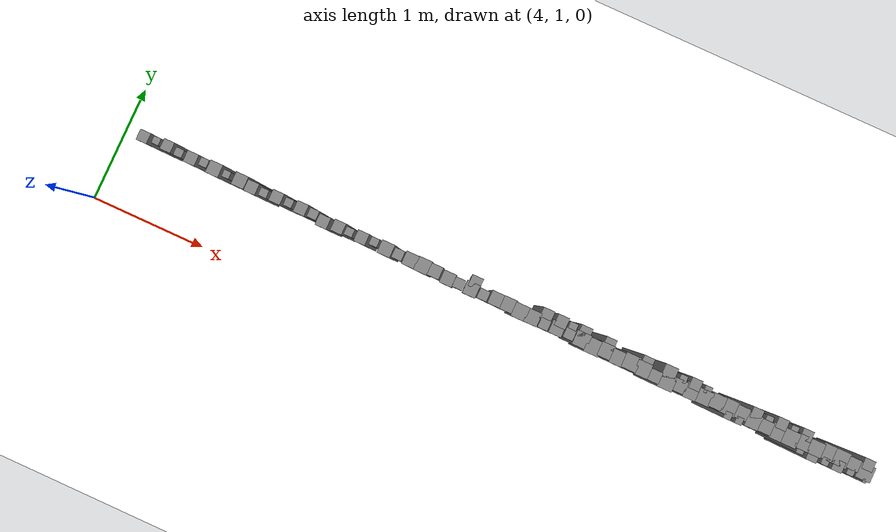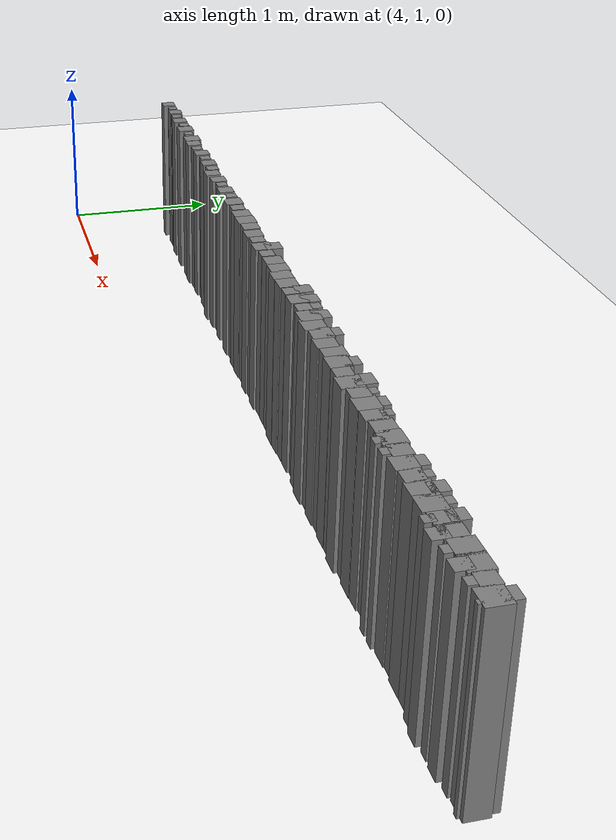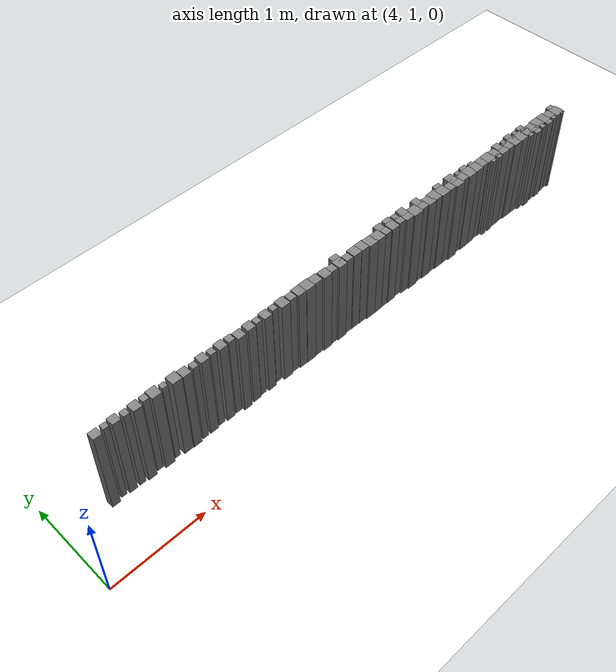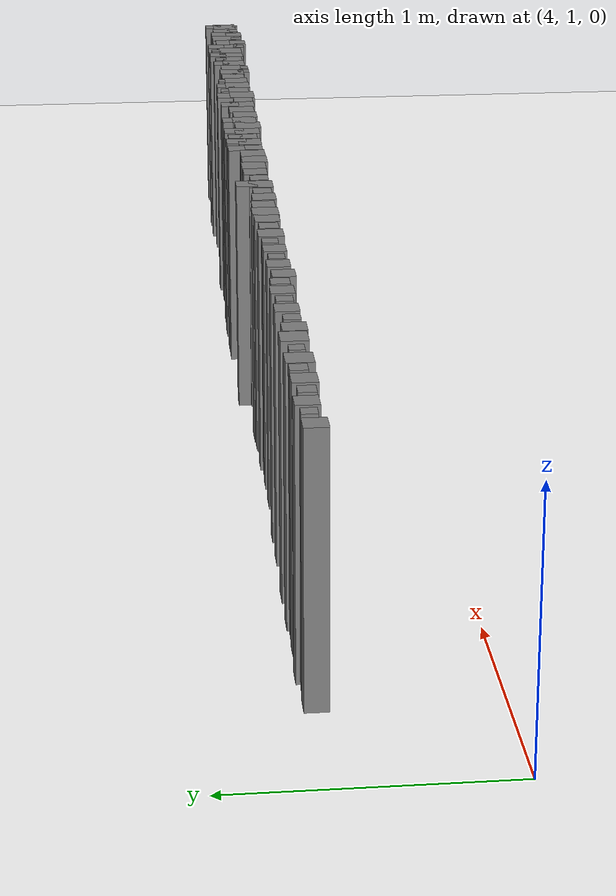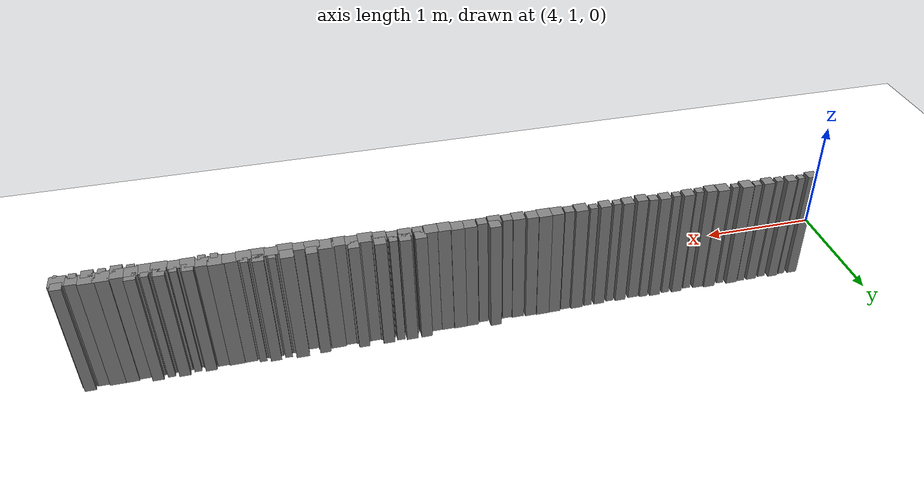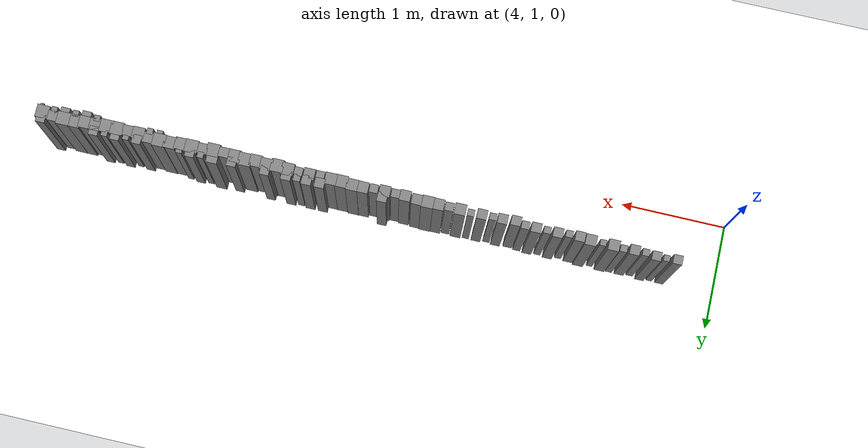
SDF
<sdf version="1.6">
 <world name="default">
  <model name="group_14">
   <pose>4.51 1.63 0.5 0 0 0</pose>
   <static>true</static>
   <link name="link">
    <collision name="collision">
     <geometry><box><size>0.08442075767464058 0.08442075767464058 1</size></box></geometry>
    </collision>
    <visual name="visual">
     <geometry><box><size>0.08442075767464058 0.08442075767464058 1</size></box></geometry>
     <material><ambient>0.5 0.5 0.5 1</ambient></material>
    </visual>
   </link>
  </model>
  <model name="group_19">
   <pose>4.61 1.64 0.5 0 0 0</pose>
   <static>true</static>
   <link name="link">
    <collision name="collision">
     <geometry><box><size>0.05628050511642709 0.05628050511642709 1</size></box></geometry>
    </collision>
    <visual name="visual">
     <geometry><box><size>0.05628050511642709 0.05628050511642709 1</size></box></geometry>
     <material><ambient>0.5 0.5 0.5 1</ambient></material>
    </visual>
   </link>
  </model>
  <model name="group_22">
   <pose>4.70 1.64 0.5 0 0 0</pose>
   <static>true</static>
   <link name="link">
    <collision name="collision">
     <geometry><box><size>0.08442075767464059 0.08442075767464059 1</size></box></geometry>
    </collision>
    <visual name="visual">
     <geometry><box><size>0.08442075767464059 0.08442075767464059 1</size></box></geometry>
     <material><ambient>0.5 0.5 0.5 1</ambient></material>
    </visual>
   </link>
  </model>
  <model name="group_27">
   <pose>4.80 1.63 0.5 0 0 0</pose>
   <static>true</static>
   <link name="link">
    <collision name="collision">
     <geometry><box><size>0.06413786030771763 0.06413786030771763 1</size></box></geometry>
    </collision>
    <visual name="visual">
     <geometry><box><size>0.06413786030771763 0.06413786030771763 1</size></box></geometry>
     <material><ambient>0.5 0.5 0.5 1</ambient></material>
    </visual>
   </link>
  </model>
  <model name="group_31">
   <pose>4.90 1.63 0.5 0 0 0</pose>
   <static>true</static>
   <link name="link">
    <collision name="collision">
     <geometry><box><size>0.09070112511455176 0.09070112511455176 1</size></box></geometry>
    </collision>
    <visual name="visual">
     <geometry><box><size>0.09070112511455176 0.09070112511455176 1</size></box></geometry>
     <material><ambient>0.5 0.5 0.5 1</ambient></material>
    </visual>
   </link>
  </model>
  <model name="group_36">
   <pose>5.00 1.64 0.5 0 0 0</pose>
   <static>true</static>
   <link name="link">
    <collision name="collision">
     <geometry><box><size>0.06413786030771801 0.06413786030771801 1</size></box></geometry>
    </collision>
    <visual name="visual">
     <geometry><box><size>0.06413786030771801 0.06413786030771801 1</size></box></geometry>
     <material><ambient>0.5 0.5 0.5 1</ambient></material>
    </visual>
   </link>
  </model>
  <model name="group_40">
   <pose>5.09 1.63 0.5 0 0 0</pose>
   <static>true</static>
   <link name="link">
    <collision name="collision">
     <geometry><box><size>0.10071559155087273 0.10071559155087273 1</size></box></geometry>
    </collision>
    <visual name="visual">
     <geometry><box><size>0.10071559155087273 0.10071559155087273 1</size></box></geometry>
     <material><ambient>0.5 0.5 0.5 1</ambient></material>
    </visual>
   </link>
  </model>
  <model name="group_44">
   <pose>5.19 1.63 0.5 0 0 0</pose>
   <static>true</static>
   <link name="link">
    <collision name="collision">
     <geometry><box><size>0.05628050511642705 0.05628050511642705 1</size></box></geometry>
    </collision>
    <visual name="visual">
     <geometry><box><size>0.05628050511642705 0.05628050511642705 1</size></box></geometry>
     <material><ambient>0.5 0.5 0.5 1</ambient></material>
    </visual>
   </link>
  </model>
  <model name="group_48">
   <pose>5.30 1.63 0.5 0 0 0</pose>
   <static>true</static>
   <link name="link">
    <collision name="collision">
     <geometry><box><size>0.10071559155087109 0.10071559155087109 1</size></box></geometry>
    </collision>
    <visual name="visual">
     <geometry><box><size>0.10071559155087109 0.10071559155087109 1</size></box></geometry>
     <material><ambient>0.5 0.5 0.5 1</ambient></material>
    </visual>
   </link>
  </model>
  <model name="group_52">
   <pose>5.40 1.62 0.5 0 0 0</pose>
   <static>true</static>
   <link name="link">
    <collision name="collision">
     <geometry><box><size>0.0907011251145523 0.0907011251145523 1</size></box></geometry>
    </collision>
    <visual name="visual">
     <geometry><box><size>0.0907011251145523 0.0907011251145523 1</size></box></geometry>
     <material><ambient>0.5 0.5 0.5 1</ambient></material>
    </visual>
   </link>
  </model>
  <model name="group_58">
   <pose>5.50 1.62 0.5 0 0 0</pose>
   <static>true</static>
   <link name="link">
    <collision name="collision">
     <geometry><box><size>0.06413786030771838 0.06413786030771838 1</size></box></geometry>
    </collision>
    <visual name="visual">
     <geometry><box><size>0.06413786030771838 0.06413786030771838 1</size></box></geometry>
     <material><ambient>0.5 0.5 0.5 1</ambient></material>
    </visual>
   </link>
  </model>
  <model name="group_61">
   <pose>5.60 1.63 0.5 0 0 0</pose>
   <static>true</static>
   <link name="link">
    <collision name="collision">
     <geometry><box><size>0.09070112511455203 0.09070112511455203 1</size></box></geometry>
    </collision>
    <visual name="visual">
     <geometry><box><size>0.09070112511455203 0.09070112511455203 1</size></box></geometry>
     <material><ambient>0.5 0.5 0.5 1</ambient></material>
    </visual>
   </link>
  </model>
  <model name="group_68">
   <pose>5.70 1.63 0.5 0 0 0</pose>
   <static>true</static>
   <link name="link">
    <collision name="collision">
     <geometry><box><size>0.06413786030771924 0.06413786030771924 1</size></box></geometry>
    </collision>
    <visual name="visual">
     <geometry><box><size>0.06413786030771924 0.06413786030771924 1</size></box></geometry>
     <material><ambient>0.5 0.5 0.5 1</ambient></material>
    </visual>
   </link>
  </model>
  <model name="group_70">
   <pose>5.80 1.63 0.5 0 0 0</pose>
   <static>true</static>
   <link name="link">
    <collision name="collision">
     <geometry><box><size>0.0907011251145519 0.0907011251145519 1</size></box></geometry>
    </collision>
    <visual name="visual">
     <geometry><box><size>0.0907011251145519 0.0907011251145519 1</size></box></geometry>
     <material><ambient>0.5 0.5 0.5 1</ambient></material>
    </visual>
   </link>
  </model>
  <model name="group_75">
   <pose>5.90 1.63 0.5 0 0 0</pose>
   <static>true</static>
   <link name="link">
    <collision name="collision">
     <geometry><box><size>0.07321409456274738 0.07321409456274738 1</size></box></geometry>
    </collision>
    <visual name="visual">
     <geometry><box><size>0.07321409456274738 0.07321409456274738 1</size></box></geometry>
     <material><ambient>0.5 0.5 0.5 1</ambient></material>
    </visual>
   </link>
  </model>
  <model name="group_78">
   <pose>5.99 1.61 0.5 0 0 0</pose>
   <static>true</static>
   <link name="link">
    <collision name="collision">
     <geometry><box><size>0.09070112511455243 0.09070112511455243 1</size></box></geometry>
    </collision>
    <visual name="visual">
     <geometry><box><size>0.09070112511455243 0.09070112511455243 1</size></box></geometry>
     <material><ambient>0.5 0.5 0.5 1</ambient></material>
    </visual>
   </link>
  </model>
  <model name="group_85">
   <pose>6.11 1.62 0.5 0 0 0</pose>
   <static>true</static>
   <link name="link">
    <collision name="collision">
     <geometry><box><size>0.09070112511455217 0.09070112511455217 1</size></box></geometry>
    </collision>
    <visual name="visual">
     <geometry><box><size>0.09070112511455217 0.09070112511455217 1</size></box></geometry>
     <material><ambient>0.5 0.5 0.5 1</ambient></material>
    </visual>
   </link>
  </model>
  <model name="group_91">
   <pose>6.20 1.62 0.5 0 0 0</pose>
   <static>true</static>
   <link name="link">
    <collision name="collision">
     <geometry><box><size>0.06413786030771819 0.06413786030771819 1</size></box></geometry>
    </collision>
    <visual name="visual">
     <geometry><box><size>0.06413786030771819 0.06413786030771819 1</size></box></geometry>
     <material><ambient>0.5 0.5 0.5 1</ambient></material>
    </visual>
   </link>
  </model>
  <model name="group_93">
   <pose>6.30 1.62 0.5 0 0 0</pose>
   <static>true</static>
   <link name="link">
    <collision name="collision">
     <geometry><box><size>0.0907011251145523 0.0907011251145523 1</size></box></geometry>
    </collision>
    <visual name="visual">
     <geometry><box><size>0.0907011251145523 0.0907011251145523 1</size></box></geometry>
     <material><ambient>0.5 0.5 0.5 1</ambient></material>
    </visual>
   </link>
  </model>
  <model name="group_99">
   <pose>6.40 1.63 0.5 0 0 0</pose>
   <static>true</static>
   <link name="link">
    <collision name="collision">
     <geometry><box><size>0.06413786030771981 0.06413786030771981 1</size></box></geometry>
    </collision>
    <visual name="visual">
     <geometry><box><size>0.06413786030771981 0.06413786030771981 1</size></box></geometry>
     <material><ambient>0.5 0.5 0.5 1</ambient></material>
    </visual>
   </link>
  </model>
  <model name="group_101">
   <pose>6.50 1.62 0.5 0 0 0</pose>
   <static>true</static>
   <link name="link">
    <collision name="collision">
     <geometry><box><size>0.10297681291020339 0.10297681291020339 1</size></box></geometry>
    </collision>
    <visual name="visual">
     <geometry><box><size>0.10297681291020339 0.10297681291020339 1</size></box></geometry>
     <material><ambient>0.5 0.5 0.5 1</ambient></material>
    </visual>
   </link>
  </model>
  <model name="group_108">
   <pose>6.60 1.62 0.5 0 0 0</pose>
   <static>true</static>
   <link name="link">
    <collision name="collision">
     <geometry><box><size>0.07960863723840887 0.07960863723840887 1</size></box></geometry>
    </collision>
    <visual name="visual">
     <geometry><box><size>0.07960863723840887 0.07960863723840887 1</size></box></geometry>
     <material><ambient>0.5 0.5 0.5 1</ambient></material>
    </visual>
   </link>
  </model>
  <model name="group_111">
   <pose>6.70 1.62 0.5 0 0 0</pose>
   <static>true</static>
   <link name="link">
    <collision name="collision">
     <geometry><box><size>0.10297681291020491 0.10297681291020491 1</size></box></geometry>
    </collision>
    <visual name="visual">
     <geometry><box><size>0.10297681291020491 0.10297681291020491 1</size></box></geometry>
     <material><ambient>0.5 0.5 0.5 1</ambient></material>
    </visual>
   </link>
  </model>
  <model name="group_116">
   <pose>6.80 1.62 0.5 0 0 0</pose>
   <static>true</static>
   <link name="link">
    <collision name="collision">
     <geometry><box><size>0.10928943497468571 0.10928943497468571 1</size></box></geometry>
    </collision>
    <visual name="visual">
     <geometry><box><size>0.10928943497468571 0.10928943497468571 1</size></box></geometry>
     <material><ambient>0.5 0.5 0.5 1</ambient></material>
    </visual>
   </link>
  </model>
  <model name="group_119">
   <pose>6.90 1.62 0.5 0 0 0</pose>
   <static>true</static>
   <link name="link">
    <collision name="collision">
     <geometry><box><size>0.09657300224092928 0.09657300224092928 1</size></box></geometry>
    </collision>
    <visual name="visual">
     <geometry><box><size>0.09657300224092928 0.09657300224092928 1</size></box></geometry>
     <material><ambient>0.5 0.5 0.5 1</ambient></material>
    </visual>
   </link>
  </model>
  <model name="group_124">
   <pose>7.01 1.61 0.5 0 0 0</pose>
   <static>true</static>
   <link name="link">
    <collision name="collision">
     <geometry><box><size>0.09976776828770309 0.09976776828770309 1</size></box></geometry>
    </collision>
    <visual name="visual">
     <geometry><box><size>0.09976776828770309 0.09976776828770309 1</size></box></geometry>
     <material><ambient>0.5 0.5 0.5 1</ambient></material>
    </visual>
   </link>
  </model>
  <model name="group_129">
   <pose>7.10 1.61 0.5 0 0 0</pose>
   <static>true</static>
   <link name="link">
    <collision name="collision">
     <geometry><box><size>0.07960863723841022 0.07960863723841022 1</size></box></geometry>
    </collision>
    <visual name="visual">
     <geometry><box><size>0.07960863723841022 0.07960863723841022 1</size></box></geometry>
     <material><ambient>0.5 0.5 0.5 1</ambient></material>
    </visual>
   </link>
  </model>
  <model name="group_134">
   <pose>7.20 1.61 0.5 0 0 0</pose>
   <static>true</static>
   <link name="link">
    <collision name="collision">
     <geometry><box><size>0.10297681291020361 0.10297681291020361 1</size></box></geometry>
    </collision>
    <visual name="visual">
     <geometry><box><size>0.10297681291020361 0.10297681291020361 1</size></box></geometry>
     <material><ambient>0.5 0.5 0.5 1</ambient></material>
    </visual>
   </link>
  </model>
  <model name="group_135">
   <pose>7.21 1.67 0.5 0 0 0</pose>
   <static>true</static>
   <link name="link">
    <collision name="collision">
     <geometry><box><size>0.09070112511455203 0.09070112511455203 1</size></box></geometry>
    </collision>
    <visual name="visual">
     <geometry><box><size>0.09070112511455203 0.09070112511455203 1</size></box></geometry>
     <material><ambient>0.5 0.5 0.5 1</ambient></material>
    </visual>
   </link>
  </model>
  <model name="group_138">
   <pose>7.30 1.61 0.5 0 0 0</pose>
   <static>true</static>
   <link name="link">
    <collision name="collision">
     <geometry><box><size>0.07960863723840934 0.07960863723840934 1</size></box></geometry>
    </collision>
    <visual name="visual">
     <geometry><box><size>0.07960863723840934 0.07960863723840934 1</size></box></geometry>
     <material><ambient>0.5 0.5 0.5 1</ambient></material>
    </visual>
   </link>
  </model>
  <model name="group_142">
   <pose>7.40 1.62 0.5 0 0 0</pose>
   <static>true</static>
   <link name="link">
    <collision name="collision">
     <geometry><box><size>0.10297681291020339 0.10297681291020339 1</size></box></geometry>
    </collision>
    <visual name="visual">
     <geometry><box><size>0.10297681291020339 0.10297681291020339 1</size></box></geometry>
     <material><ambient>0.5 0.5 0.5 1</ambient></material>
    </visual>
   </link>
  </model>
  <model name="group_146">
   <pose>7.50 1.62 0.5 0 0 0</pose>
   <static>true</static>
   <link name="link">
    <collision name="collision">
     <geometry><box><size>0.10647461046978636 0.10647461046978636 1</size></box></geometry>
    </collision>
    <visual name="visual">
     <geometry><box><size>0.10647461046978636 0.10647461046978636 1</size></box></geometry>
     <material><ambient>0.5 0.5 0.5 1</ambient></material>
    </visual>
   </link>
  </model>
  <model name="group_150">
   <pose>7.60 1.61 0.5 0 0 0</pose>
   <static>true</static>
   <link name="link">
    <collision name="collision">
     <geometry><box><size>0.11218382099302716 0.11218382099302716 1</size></box></geometry>
    </collision>
    <visual name="visual">
     <geometry><box><size>0.11218382099302716 0.11218382099302716 1</size></box></geometry>
     <material><ambient>0.5 0.5 0.5 1</ambient></material>
    </visual>
   </link>
  </model>
  <model name="group_156">
   <pose>7.70 1.61 0.5 0 0 0</pose>
   <static>true</static>
   <link name="link">
    <collision name="collision">
     <geometry><box><size>0.10915025861500077 0.10915025861500077 1</size></box></geometry>
    </collision>
    <visual name="visual">
     <geometry><box><size>0.10915025861500077 0.10915025861500077 1</size></box></geometry>
     <material><ambient>0.5 0.5 0.5 1</ambient></material>
    </visual>
   </link>
  </model>
  <model name="group_160">
   <pose>7.79 1.67 0.5 0 0 0</pose>
   <static>true</static>
   <link name="link">
    <collision name="collision">
     <geometry><box><size>0.09070112511455203 0.09070112511455203 1</size></box></geometry>
    </collision>
    <visual name="visual">
     <geometry><box><size>0.09070112511455203 0.09070112511455203 1</size></box></geometry>
     <material><ambient>0.5 0.5 0.5 1</ambient></material>
    </visual>
   </link>
  </model>
  <model name="group_161">
   <pose>7.80 1.60 0.5 0 0 0</pose>
   <static>true</static>
   <link name="link">
    <collision name="collision">
     <geometry><box><size>0.07960863723840858 0.07960863723840858 1</size></box></geometry>
    </collision>
    <visual name="visual">
     <geometry><box><size>0.07960863723840858 0.07960863723840858 1</size></box></geometry>
     <material><ambient>0.5 0.5 0.5 1</ambient></material>
    </visual>
   </link>
  </model>
  <model name="group_164">
   <pose>7.90 1.61 0.5 0 0 0</pose>
   <static>true</static>
   <link name="link">
    <collision name="collision">
     <geometry><box><size>0.10297681291020315 0.10297681291020315 1</size></box></geometry>
    </collision>
    <visual name="visual">
     <geometry><box><size>0.10297681291020315 0.10297681291020315 1</size></box></geometry>
     <material><ambient>0.5 0.5 0.5 1</ambient></material>
    </visual>
   </link>
  </model>
  <model name="group_165">
   <pose>7.91 1.67 0.5 0 0 0</pose>
   <static>true</static>
   <link name="link">
    <collision name="collision">
     <geometry><box><size>0.09070112511455217 0.09070112511455217 1</size></box></geometry>
    </collision>
    <visual name="visual">
     <geometry><box><size>0.09070112511455217 0.09070112511455217 1</size></box></geometry>
     <material><ambient>0.5 0.5 0.5 1</ambient></material>
    </visual>
   </link>
  </model>
  <model name="group_168">
   <pose>8.00 1.61 0.5 0 0 0</pose>
   <static>true</static>
   <link name="link">
    <collision name="collision">
     <geometry><box><size>0.07960863723840858 0.07960863723840858 1</size></box></geometry>
    </collision>
    <visual name="visual">
     <geometry><box><size>0.07960863723840858 0.07960863723840858 1</size></box></geometry>
     <material><ambient>0.5 0.5 0.5 1</ambient></material>
    </visual>
   </link>
  </model>
  <model name="group_169">
   <pose>8.00 1.67 0.5 0 0 0</pose>
   <static>true</static>
   <link name="link">
    <collision name="collision">
     <geometry><box><size>0.06413786030772037 0.06413786030772037 1</size></box></geometry>
    </collision>
    <visual name="visual">
     <geometry><box><size>0.06413786030772037 0.06413786030772037 1</size></box></geometry>
     <material><ambient>0.5 0.5 0.5 1</ambient></material>
    </visual>
   </link>
  </model>
  <model name="group_172">
   <pose>8.10 1.61 0.5 0 0 0</pose>
   <static>true</static>
   <link name="link">
    <collision name="collision">
     <geometry><box><size>0.11493900367022089 0.11493900367022089 1</size></box></geometry>
    </collision>
    <visual name="visual">
     <geometry><box><size>0.11493900367022089 0.11493900367022089 1</size></box></geometry>
     <material><ambient>0.5 0.5 0.5 1</ambient></material>
    </visual>
   </link>
  </model>
  <model name="group_173">
   <pose>8.10 1.67 0.5 0 0 0</pose>
   <static>true</static>
   <link name="link">
    <collision name="collision">
     <geometry><box><size>0.09070112511455372 0.09070112511455372 1</size></box></geometry>
    </collision>
    <visual name="visual">
     <geometry><box><size>0.09070112511455372 0.09070112511455372 1</size></box></geometry>
     <material><ambient>0.5 0.5 0.5 1</ambient></material>
    </visual>
   </link>
  </model>
  <model name="group_177">
   <pose>8.20 1.60 0.5 0 0 0</pose>
   <static>true</static>
   <link name="link">
    <collision name="collision">
     <geometry><box><size>0.11884310777185733 0.11884310777185733 1</size></box></geometry>
    </collision>
    <visual name="visual">
     <geometry><box><size>0.11884310777185733 0.11884310777185733 1</size></box></geometry>
     <material><ambient>0.5 0.5 0.5 1</ambient></material>
    </visual>
   </link>
  </model>
  <model name="group_181">
   <pose>8.30 1.61 0.5 0 0 0</pose>
   <static>true</static>
   <link name="link">
    <collision name="collision">
     <geometry><box><size>0.11145209213377467 0.11145209213377467 1</size></box></geometry>
    </collision>
    <visual name="visual">
     <geometry><box><size>0.11145209213377467 0.11145209213377467 1</size></box></geometry>
     <material><ambient>0.5 0.5 0.5 1</ambient></material>
    </visual>
   </link>
  </model>
  <model name="group_182">
   <pose>8.30 1.67 0.5 0 0 0</pose>
   <static>true</static>
   <link name="link">
    <collision name="collision">
     <geometry><box><size>0.0844207576746406 0.0844207576746406 1</size></box></geometry>
    </collision>
    <visual name="visual">
     <geometry><box><size>0.0844207576746406 0.0844207576746406 1</size></box></geometry>
     <material><ambient>0.5 0.5 0.5 1</ambient></material>
    </visual>
   </link>
  </model>
  <model name="group_185">
   <pose>8.40 1.60 0.5 0 0 0</pose>
   <static>true</static>
   <link name="link">
    <collision name="collision">
     <geometry><box><size>0.11145209213377169 0.11145209213377169 1</size></box></geometry>
    </collision>
    <visual name="visual">
     <geometry><box><size>0.11145209213377169 0.11145209213377169 1</size></box></geometry>
     <material><ambient>0.5 0.5 0.5 1</ambient></material>
    </visual>
   </link>
  </model>
  <model name="group_189">
   <pose>8.50 1.61 0.5 0 0 0</pose>
   <static>true</static>
   <link name="link">
    <collision name="collision">
     <geometry><box><size>0.11884310777185685 0.11884310777185685 1</size></box></geometry>
    </collision>
    <visual name="visual">
     <geometry><box><size>0.11884310777185685 0.11884310777185685 1</size></box></geometry>
     <material><ambient>0.5 0.5 0.5 1</ambient></material>
    </visual>
   </link>
  </model>
  <model name="group_193">
   <pose>8.60 1.60 0.5 0 0 0</pose>
   <static>true</static>
   <link name="link">
    <collision name="collision">
     <geometry><box><size>0.11493900367021977 0.11493900367021977 1</size></box></geometry>
    </collision>
    <visual name="visual">
     <geometry><box><size>0.11493900367021977 0.11493900367021977 1</size></box></geometry>
     <material><ambient>0.5 0.5 0.5 1</ambient></material>
    </visual>
   </link>
  </model>
  <model name="group_194">
   <pose>8.61 1.66 0.5 0 0 0</pose>
   <static>true</static>
   <link name="link">
    <collision name="collision">
     <geometry><box><size>0.08546774061064026 0.08546774061064026 1</size></box></geometry>
    </collision>
    <visual name="visual">
     <geometry><box><size>0.08546774061064026 0.08546774061064026 1</size></box></geometry>
     <material><ambient>0.5 0.5 0.5 1</ambient></material>
    </visual>
   </link>
  </model>
  <model name="group_198">
   <pose>8.70 1.59 0.5 0 0 0</pose>
   <static>true</static>
   <link name="link">
    <collision name="collision">
     <geometry><box><size>0.09244449216996832 0.09244449216996832 1</size></box></geometry>
    </collision>
    <visual name="visual">
     <geometry><box><size>0.09244449216996832 0.09244449216996832 1</size></box></geometry>
     <material><ambient>0.5 0.5 0.5 1</ambient></material>
    </visual>
   </link>
  </model>
  <model name="group_202">
   <pose>8.80 1.59 0.5 0 0 0</pose>
   <static>true</static>
   <link name="link">
    <collision name="collision">
     <geometry><box><size>0.11941295585761413 0.11941295585761413 1</size></box></geometry>
    </collision>
    <visual name="visual">
     <geometry><box><size>0.11941295585761413 0.11941295585761413 1</size></box></geometry>
     <material><ambient>0.5 0.5 0.5 1</ambient></material>
    </visual>
   </link>
  </model>
  <model name="group_203">
   <pose>8.79 1.66 0.5 0 0 0</pose>
   <static>true</static>
   <link name="link">
    <collision name="collision">
     <geometry><box><size>0.10273569860668195 0.10273569860668195 1</size></box></geometry>
    </collision>
    <visual name="visual">
     <geometry><box><size>0.10273569860668195 0.10273569860668195 1</size></box></geometry>
     <material><ambient>0.5 0.5 0.5 1</ambient></material>
    </visual>
   </link>
  </model>
  <model name="group_207">
   <pose>8.90 1.60 0.5 0 0 0</pose>
   <static>true</static>
   <link name="link">
    <collision name="collision">
     <geometry><box><size>0.09919226406566836 0.09919226406566836 1</size></box></geometry>
    </collision>
    <visual name="visual">
     <geometry><box><size>0.09919226406566836 0.09919226406566836 1</size></box></geometry>
     <material><ambient>0.5 0.5 0.5 1</ambient></material>
    </visual>
   </link>
  </model>
  <model name="group_208">
   <pose>8.90 1.66 0.5 0 0 0</pose>
   <static>true</static>
   <link name="link">
    <collision name="collision">
     <geometry><box><size>0.05628050511642709 0.05628050511642709 1</size></box></geometry>
    </collision>
    <visual name="visual">
     <geometry><box><size>0.05628050511642709 0.05628050511642709 1</size></box></geometry>
     <material><ambient>0.5 0.5 0.5 1</ambient></material>
    </visual>
   </link>
  </model>
  <model name="group_211">
   <pose>9.00 1.60 0.5 0 0 0</pose>
   <static>true</static>
   <link name="link">
    <collision name="collision">
     <geometry><box><size>0.11941295585761384 0.11941295585761384 1</size></box></geometry>
    </collision>
    <visual name="visual">
     <geometry><box><size>0.11941295585761384 0.11941295585761384 1</size></box></geometry>
     <material><ambient>0.5 0.5 0.5 1</ambient></material>
    </visual>
   </link>
  </model>
  <model name="group_212">
   <pose>9.00 1.66 0.5 0 0 0</pose>
   <static>true</static>
   <link name="link">
    <collision name="collision">
     <geometry><box><size>0.08442075767464058 0.08442075767464058 1</size></box></geometry>
    </collision>
    <visual name="visual">
     <geometry><box><size>0.08442075767464058 0.08442075767464058 1</size></box></geometry>
     <material><ambient>0.5 0.5 0.5 1</ambient></material>
    </visual>
   </link>
  </model>
  <model name="group_215">
   <pose>9.10 1.60 0.5 0 0 0</pose>
   <static>true</static>
   <link name="link">
    <collision name="collision">
     <geometry><box><size>0.11218382099302139 0.11218382099302139 1</size></box></geometry>
    </collision>
    <visual name="visual">
     <geometry><box><size>0.11218382099302139 0.11218382099302139 1</size></box></geometry>
     <material><ambient>0.5 0.5 0.5 1</ambient></material>
    </visual>
   </link>
  </model>
  <model name="group_216">
   <pose>9.10 1.66 0.5 0 0 0</pose>
   <static>true</static>
   <link name="link">
    <collision name="collision">
     <geometry><box><size>0.05628050511642705 0.05628050511642705 1</size></box></geometry>
    </collision>
    <visual name="visual">
     <geometry><box><size>0.05628050511642705 0.05628050511642705 1</size></box></geometry>
     <material><ambient>0.5 0.5 0.5 1</ambient></material>
    </visual>
   </link>
  </model>
  <model name="group_219">
   <pose>9.20 1.61 0.5 0 0 0</pose>
   <static>true</static>
   <link name="link">
    <collision name="collision">
     <geometry><box><size>0.11218382099302716 0.11218382099302716 1</size></box></geometry>
    </collision>
    <visual name="visual">
     <geometry><box><size>0.11218382099302716 0.11218382099302716 1</size></box></geometry>
     <material><ambient>0.5 0.5 0.5 1</ambient></material>
    </visual>
   </link>
  </model>
  <model name="group_224">
   <pose>9.30 1.61 0.5 0 0 0</pose>
   <static>true</static>
   <link name="link">
    <collision name="collision">
     <geometry><box><size>0.11941295585761653 0.11941295585761653 1</size></box></geometry>
    </collision>
    <visual name="visual">
     <geometry><box><size>0.11941295585761653 0.11941295585761653 1</size></box></geometry>
     <material><ambient>0.5 0.5 0.5 1</ambient></material>
    </visual>
   </link>
  </model>
  <model name="group_226">
   <pose>9.31 1.55 0.5 0 0 0</pose>
   <static>true</static>
   <link name="link">
    <collision name="collision">
     <geometry><box><size>0.05628050511642709 0.05628050511642709 1</size></box></geometry>
    </collision>
    <visual name="visual">
     <geometry><box><size>0.05628050511642709 0.05628050511642709 1</size></box></geometry>
     <material><ambient>0.5 0.5 0.5 1</ambient></material>
    </visual>
   </link>
  </model>
  <model name="group_230">
   <pose>9.40 1.55 0.5 0 0 0</pose>
   <static>true</static>
   <link name="link">
    <collision name="collision">
     <geometry><box><size>0.05628050511642705 0.05628050511642705 1</size></box></geometry>
    </collision>
    <visual name="visual">
     <geometry><box><size>0.05628050511642705 0.05628050511642705 1</size></box></geometry>
     <material><ambient>0.5 0.5 0.5 1</ambient></material>
    </visual>
   </link>
  </model>
  <model name="group_231">
   <pose>9.40 1.61 0.5 0 0 0</pose>
   <static>true</static>
   <link name="link">
    <collision name="collision">
     <geometry><box><size>0.09919226406566545 0.09919226406566545 1</size></box></geometry>
    </collision>
    <visual name="visual">
     <geometry><box><size>0.09919226406566545 0.09919226406566545 1</size></box></geometry>
     <material><ambient>0.5 0.5 0.5 1</ambient></material>
    </visual>
   </link>
  </model>
  <model name="group_234">
   <pose>9.45 1.55 0.5 0 0 0</pose>
   <static>true</static>
   <link name="link">
    <collision name="collision"><geometry><box><size>0.0 0.0 1</size></box></geometry></collision>
    <visual name="visual">
     <geometry><box><size>0.0 0.0 1</size></box></geometry>
     <material><ambient>0.5 0.5 0.5 1</ambient></material>
    </visual>
   </link>
  </model>
  <model name="group_235">
   <pose>9.50 1.59 0.5 0 0 0</pose>
   <static>true</static>
   <link name="link">
    <collision name="collision">
     <geometry><box><size>0.1114520921337714 0.1114520921337714 1</size></box></geometry>
    </collision>
    <visual name="visual">
     <geometry><box><size>0.1114520921337714 0.1114520921337714 1</size></box></geometry>
     <material><ambient>0.5 0.5 0.5 1</ambient></material>
    </visual>
   </link>
  </model>
  <model name="group_236">
   <pose>9.50 1.65 0.5 0 0 0</pose>
   <static>true</static>
   <link name="link">
    <collision name="collision">
     <geometry><box><size>0.08442075767464413 0.08442075767464413 1</size></box></geometry>
    </collision>
    <visual name="visual">
     <geometry><box><size>0.08442075767464413 0.08442075767464413 1</size></box></geometry>
     <material><ambient>0.5 0.5 0.5 1</ambient></material>
    </visual>
   </link>
  </model>
  <model name="group_239">
   <pose>9.60 1.59 0.5 0 0 0</pose>
   <static>true</static>
   <link name="link">
    <collision name="collision">
     <geometry><box><size>0.09919226406567094 0.09919226406567094 1</size></box></geometry>
    </collision>
    <visual name="visual">
     <geometry><box><size>0.09919226406567094 0.09919226406567094 1</size></box></geometry>
     <material><ambient>0.5 0.5 0.5 1</ambient></material>
    </visual>
   </link>
  </model>
  <model name="group_240">
   <pose>9.60 1.65 0.5 0 0 0</pose>
   <static>true</static>
   <link name="link">
    <collision name="collision">
     <geometry><box><size>0.05628050511642709 0.05628050511642709 1</size></box></geometry>
    </collision>
    <visual name="visual">
     <geometry><box><size>0.05628050511642709 0.05628050511642709 1</size></box></geometry>
     <material><ambient>0.5 0.5 0.5 1</ambient></material>
    </visual>
   </link>
  </model>
  <model name="group_243">
   <pose>9.70 1.59 0.5 0 0 0</pose>
   <static>true</static>
   <link name="link">
    <collision name="collision">
     <geometry><box><size>0.11941295585761173 0.11941295585761173 1</size></box></geometry>
    </collision>
    <visual name="visual">
     <geometry><box><size>0.11941295585761173 0.11941295585761173 1</size></box></geometry>
     <material><ambient>0.5 0.5 0.5 1</ambient></material>
    </visual>
   </link>
  </model>
  <model name="group_244">
   <pose>9.70 1.66 0.5 0 0 0</pose>
   <static>true</static>
   <link name="link">
    <collision name="collision">
     <geometry><box><size>0.08442075767464059 0.08442075767464059 1</size></box></geometry>
    </collision>
    <visual name="visual">
     <geometry><box><size>0.08442075767464059 0.08442075767464059 1</size></box></geometry>
     <material><ambient>0.5 0.5 0.5 1</ambient></material>
    </visual>
   </link>
  </model>
  <model name="group_247">
   <pose>9.80 1.59 0.5 0 0 0</pose>
   <static>true</static>
   <link name="link">
    <collision name="collision">
     <geometry><box><size>0.1188431077718539 0.1188431077718539 1</size></box></geometry>
    </collision>
    <visual name="visual">
     <geometry><box><size>0.1188431077718539 0.1188431077718539 1</size></box></geometry>
     <material><ambient>0.5 0.5 0.5 1</ambient></material>
    </visual>
   </link>
  </model>
  <model name="group_248">
   <pose>9.80 1.66 0.5 0 0 0</pose>
   <static>true</static>
   <link name="link">
    <collision name="collision">
     <geometry><box><size>0.05628050511642705 0.05628050511642705 1</size></box></geometry>
    </collision>
    <visual name="visual">
     <geometry><box><size>0.05628050511642705 0.05628050511642705 1</size></box></geometry>
     <material><ambient>0.5 0.5 0.5 1</ambient></material>
    </visual>
   </link>
  </model>
  <model name="group_252">
   <pose>9.85 1.54 0.5 0 0 0</pose>
   <static>true</static>
   <link name="link">
    <collision name="collision"><geometry><box><size>0.0 0.0 1</size></box></geometry></collision>
    <visual name="visual">
     <geometry><box><size>0.0 0.0 1</size></box></geometry>
     <material><ambient>0.5 0.5 0.5 1</ambient></material>
    </visual>
   </link>
  </model>
  <model name="group_253">
   <pose>9.90 1.60 0.5 0 0 0</pose>
   <static>true</static>
   <link name="link">
    <collision name="collision">
     <geometry><box><size>0.11145209213377111 0.11145209213377111 1</size></box></geometry>
    </collision>
    <visual name="visual">
     <geometry><box><size>0.11145209213377111 0.11145209213377111 1</size></box></geometry>
     <material><ambient>0.5 0.5 0.5 1</ambient></material>
    </visual>
   </link>
  </model>
  <model name="group_254">
   <pose>9.90 1.66 0.5 0 0 0</pose>
   <static>true</static>
   <link name="link">
    <collision name="collision">
     <geometry><box><size>0.08442075767464058 0.08442075767464058 1</size></box></geometry>
    </collision>
    <visual name="visual">
     <geometry><box><size>0.08442075767464058 0.08442075767464058 1</size></box></geometry>
     <material><ambient>0.5 0.5 0.5 1</ambient></material>
    </visual>
   </link>
  </model>
  <model name="group_255">
   <pose>9.90 1.54 0.5 0 0 0</pose>
   <static>true</static>
   <link name="link">
    <collision name="collision">
     <geometry><box><size>0.05628050511642705 0.05628050511642705 1</size></box></geometry>
    </collision>
    <visual name="visual">
     <geometry><box><size>0.05628050511642705 0.05628050511642705 1</size></box></geometry>
     <material><ambient>0.5 0.5 0.5 1</ambient></material>
    </visual>
   </link>
  </model>
  <model name="group_258">
   <pose>10.00 1.54 0.5 0 0 0</pose>
   <static>true</static>
   <link name="link">
    <collision name="collision">
     <geometry><box><size>0.0844207576746406 0.0844207576746406 1</size></box></geometry>
    </collision>
    <visual name="visual">
     <geometry><box><size>0.0844207576746406 0.0844207576746406 1</size></box></geometry>
     <material><ambient>0.5 0.5 0.5 1</ambient></material>
    </visual>
   </link>
  </model>
  <model name="group_259">
   <pose>10.00 1.60 0.5 0 0 0</pose>
   <static>true</static>
   <link name="link">
    <collision name="collision">
     <geometry><box><size>0.11145209213377227 0.11145209213377227 1</size></box></geometry>
    </collision>
    <visual name="visual">
     <geometry><box><size>0.11145209213377227 0.11145209213377227 1</size></box></geometry>
     <material><ambient>0.5 0.5 0.5 1</ambient></material>
    </visual>
   </link>
  </model>
  <model name="group_262">
   <pose>10.10 1.61 0.5 0 0 0</pose>
   <static>true</static>
   <link name="link">
    <collision name="collision">
     <geometry><box><size>0.11884310777185635 0.11884310777185635 1</size></box></geometry>
    </collision>
    <visual name="visual">
     <geometry><box><size>0.11884310777185635 0.11884310777185635 1</size></box></geometry>
     <material><ambient>0.5 0.5 0.5 1</ambient></material>
    </visual>
   </link>
  </model>
  <model name="group_263">
   <pose>10.10 1.54 0.5 0 0 0</pose>
   <static>true</static>
   <link name="link">
    <collision name="collision">
     <geometry><box><size>0.05628050511642709 0.05628050511642709 1</size></box></geometry>
    </collision>
    <visual name="visual">
     <geometry><box><size>0.05628050511642709 0.05628050511642709 1</size></box></geometry>
     <material><ambient>0.5 0.5 0.5 1</ambient></material>
    </visual>
   </link>
  </model>
  <model name="group_266">
   <pose>10.20 1.55 0.5 0 0 0</pose>
   <static>true</static>
   <link name="link">
    <collision name="collision">
     <geometry><box><size>0.0844207576746406 0.0844207576746406 1</size></box></geometry>
    </collision>
    <visual name="visual">
     <geometry><box><size>0.0844207576746406 0.0844207576746406 1</size></box></geometry>
     <material><ambient>0.5 0.5 0.5 1</ambient></material>
    </visual>
   </link>
  </model>
  <model name="group_267">
   <pose>10.20 1.61 0.5 0 0 0</pose>
   <static>true</static>
   <link name="link">
    <collision name="collision">
     <geometry><box><size>0.11941295585761681 0.11941295585761681 1</size></box></geometry>
    </collision>
    <visual name="visual">
     <geometry><box><size>0.11941295585761681 0.11941295585761681 1</size></box></geometry>
     <material><ambient>0.5 0.5 0.5 1</ambient></material>
    </visual>
   </link>
  </model>
  <model name="group_270">
   <pose>10.30 1.55 0.5 0 0 0</pose>
   <static>true</static>
   <link name="link">
    <collision name="collision">
     <geometry><box><size>0.05628050511642705 0.05628050511642705 1</size></box></geometry>
    </collision>
    <visual name="visual">
     <geometry><box><size>0.05628050511642705 0.05628050511642705 1</size></box></geometry>
     <material><ambient>0.5 0.5 0.5 1</ambient></material>
    </visual>
   </link>
  </model>
  <model name="group_271">
   <pose>10.30 1.61 0.5 0 0 0</pose>
   <static>true</static>
   <link name="link">
    <collision name="collision">
     <geometry><box><size>0.09244449216996832 0.09244449216996832 1</size></box></geometry>
    </collision>
    <visual name="visual">
     <geometry><box><size>0.09244449216996832 0.09244449216996832 1</size></box></geometry>
     <material><ambient>0.5 0.5 0.5 1</ambient></material>
    </visual>
   </link>
  </model>
  <model name="group_274">
   <pose>10.33 1.65 0.5 0 0 0</pose>
   <static>true</static>
   <link name="link">
    <collision name="collision"><geometry><box><size>0.0 0.0 1</size></box></geometry></collision>
    <visual name="visual">
     <geometry><box><size>0.0 0.0 1</size></box></geometry>
     <material><ambient>0.5 0.5 0.5 1</ambient></material>
    </visual>
   </link>
  </model>
  <model name="group_276">
   <pose>10.40 1.59 0.5 0 0 0</pose>
   <static>true</static>
   <link name="link">
    <collision name="collision">
     <geometry><box><size>0.11941295585761681 0.11941295585761681 1</size></box></geometry>
    </collision>
    <visual name="visual">
     <geometry><box><size>0.11941295585761681 0.11941295585761681 1</size></box></geometry>
     <material><ambient>0.5 0.5 0.5 1</ambient></material>
    </visual>
   </link>
  </model>
  <model name="group_277">
   <pose>10.40 1.65 0.5 0 0 0</pose>
   <static>true</static>
   <link name="link">
    <collision name="collision">
     <geometry><box><size>0.0844207576746406 0.0844207576746406 1</size></box></geometry>
    </collision>
    <visual name="visual">
     <geometry><box><size>0.0844207576746406 0.0844207576746406 1</size></box></geometry>
     <material><ambient>0.5 0.5 0.5 1</ambient></material>
    </visual>
   </link>
  </model>
  <model name="group_281">
   <pose>10.42 1.53 0.5 0 0 0</pose>
   <static>true</static>
   <link name="link">
    <collision name="collision">
     <geometry><box><size>0.028140252558213525 0.028140252558213525 1</size></box></geometry>
    </collision>
    <visual name="visual">
     <geometry><box><size>0.028140252558213525 0.028140252558213525 1</size></box></geometry>
     <material><ambient>0.5 0.5 0.5 1</ambient></material>
    </visual>
   </link>
  </model>
  <model name="ground_plane">
   <static>true</static>
   <link name="link">
    <collision name="collision">
     <geometry><plane><normal>0 0 1</normal><size>100 100</size></plane></geometry>
    </collision>
    <visual name="visual">
     <geometry><plane><normal>0 0 1</normal><size>100 100</size></plane></geometry>
     <material><ambient>1 1 1 1</ambient></material>
    </visual>
   </link>
  </model>
 </world>
</sdf>
